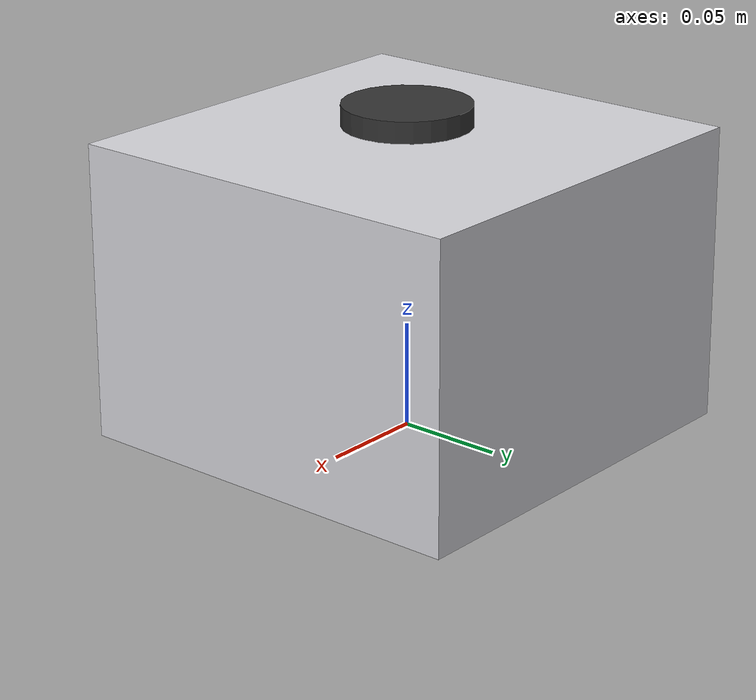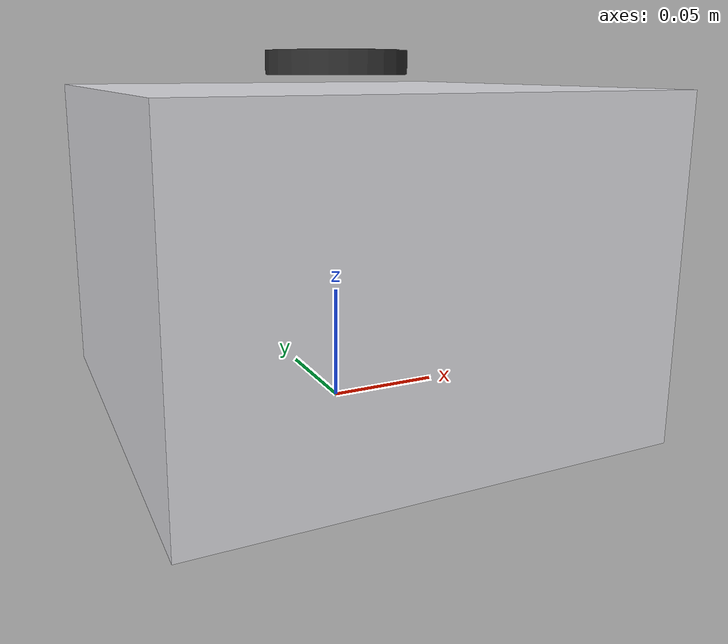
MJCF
<?xml version="1.0" encoding="utf-8"?>
<mujoco model="metal_spectrometer">
  <compiler angle="radian" autolimits="true"/>
  <default>
    <default class="body"><geom contype="1" conaffinity="1"/></default>
  </default>
  <worldbody>
    <body name="base">
      <geom type="box" size="0.1 0.1 0.07" pos="0 0 0.07" rgba="0.85 0.85 0.87 1" class="body"/>
      <geom type="box" size="0.03 0.005000000000000001 0.0175" pos="-0.05 -0.09000000000000001 0.10500000000000001" rgba="0.9 0.7 0.1 1" class="body"/>
      <body name="stage" pos="0 0 0.15">
        <joint name="stage_joint" type="slide" axis="0 0 1" range="-0.03 0" damping="1.0" frictionloss="0.3"/>
  <geom type="cylinder" size="0.03 0.005" pos="0 0 0" rgba="0.2 0.2 0.2 1" class="body"/>
      </body>
    </body>
  </worldbody>
</mujoco>
